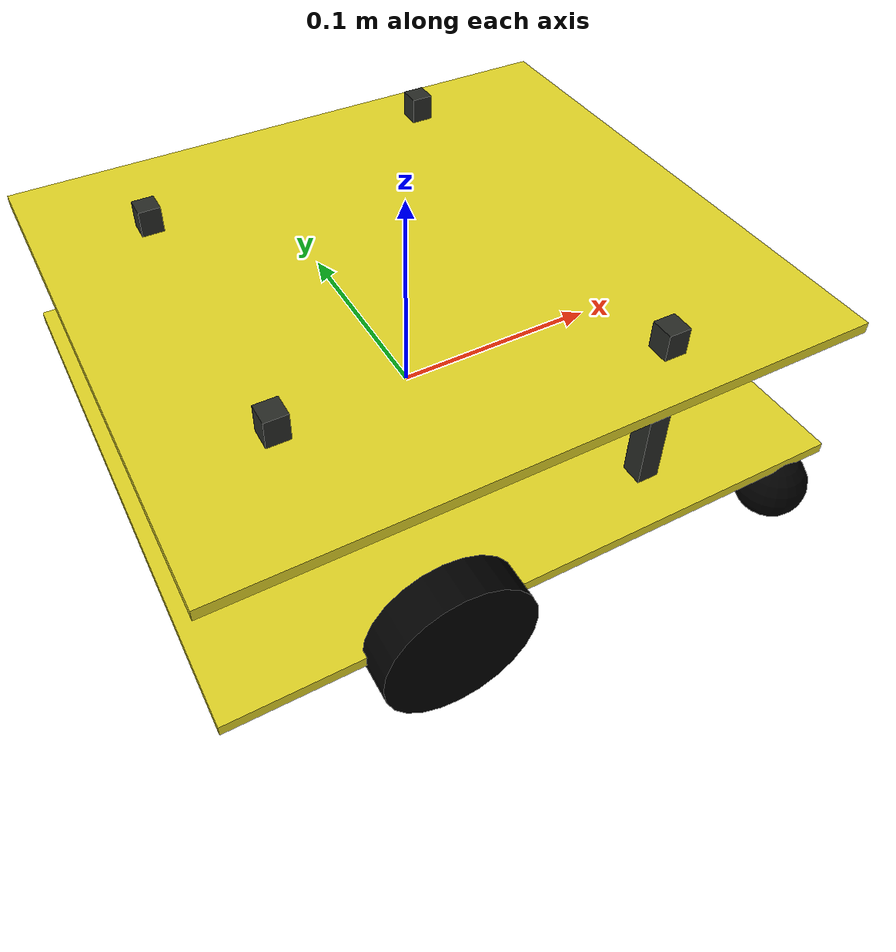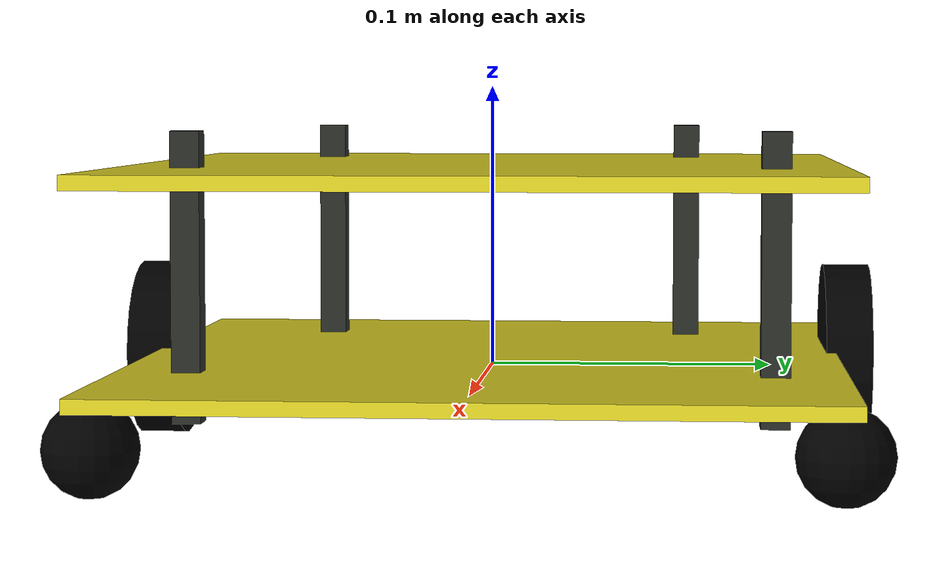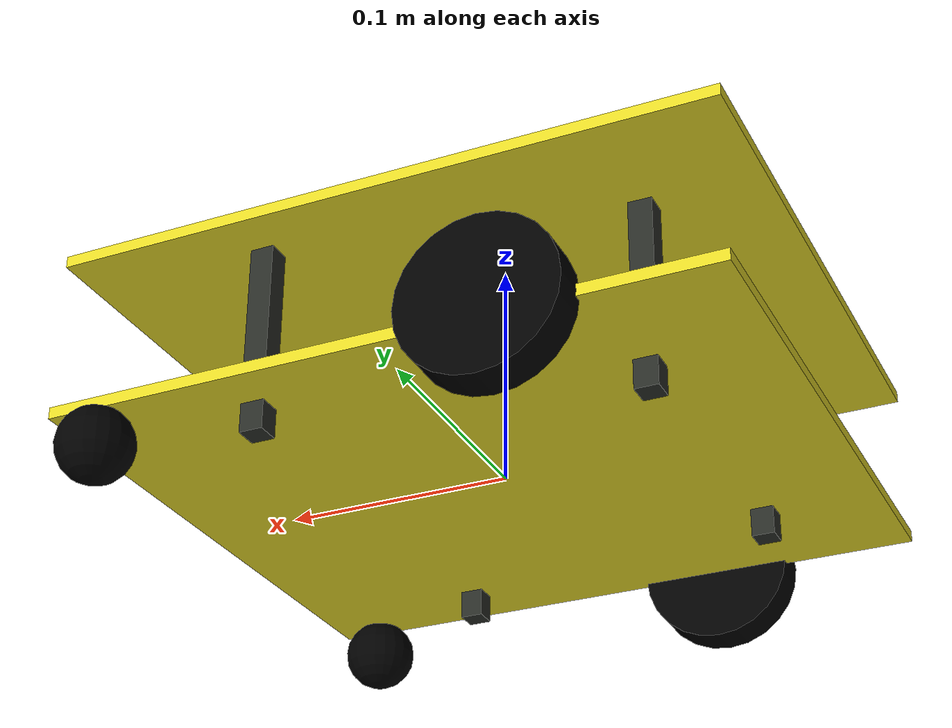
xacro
<?xml version="1.0"?>
<robot name="mrobot" xmlns:xacro="http://www.ros.org/wiki/xacro">

    <!-- Defining the colors used in this robot -->
    <material name="Black">
        <color rgba="0 0 0 1"/>
    </material>

    <material name="White">
        <color rgba="1 1 1 1"/>
    </material>

    <material name="Blue">
        <color rgba="0 0 1 1"/>
    </material>

    <material name="Red">
        <color rgba="1 0 0 1"/>
    </material>

    <!-- PROPERTY LIST -->
    <!--All units in m-kg-s-radians unit system -->
    <xacro:property name="M_PI" value="3.1415926535897931" />

    <xacro:property name="base_link_length_up" value="0.005"/>
    <xacro:property name="base_link_radius" value="0.13"/>

    <!-- Main body length, width, height and mass -->
    <xacro:property name="base_link_mass"        value="0.5" />
    <xacro:property name="base_link_width" value="0.25"/>
    <xacro:property name="base_link_length" value="0.28"/>
    <xacro:property name="base_link_hight" value="0.005"/>

    <xacro:property name="motor_x" value="-0.05"/>

    <!-- Caster radius and mass -->
    <xacro:property name="caster_radius"          value="0.016" />
    <xacro:property name="caster_mass"            value="0.01" />
    <xacro:property name="caster_joint_origin_x"  value="-0.12" />

    <!-- Wheel radius, height and mass -->
    <xacro:property name="wheel_radius" value="0.033" />
    <xacro:property name="wheel_height" value="0.017" />
    <xacro:property name="wheel_mass"   value="0.1" />

    <!-- plate height and mass -->
    <xacro:property name="plate_mass"   value="0.05"/>
    <xacro:property name="plate_height" value="0.07"/>
    <xacro:property name="standoff_x"   value="0.12"/>
    <xacro:property name="standoff_y"   value="0.10"/>

    <!-- Macro for inertia matrix -->
    <xacro:macro name="sphere_inertial_matrix" params="m r">
        <inertial>
            <mass value="${m}" />
            <inertia ixx="${2*m*r*r/5}" ixy="0" ixz="0"
                iyy="${2*m*r*r/5}" iyz="0"
                izz="${2*m*r*r/5}" />
        </inertial>
    </xacro:macro>

    <xacro:macro name="cylinder_inertial_matrix" params="m r h">
        <inertial>
            <mass value="${m}" />
            <inertia ixx="${m*(3*r*r+h*h)/12}" ixy = "0" ixz = "0"
                iyy="${m*(3*r*r+h*h)/12}" iyz = "0"
                izz="${m*r*r/2}" />
        </inertial>
    </xacro:macro>

    <xacro:macro name="box_inertial_matrix" params="m w h d">
        <inertial>
            <mass value="${m}" />
            <inertia ixx="${m*(h*h+d*d)/12}" ixy = "0" ixz = "0"
                iyy="${m*(w*w+d*d)/12}" iyz = "0"
                izz="${m*(w*w+h*h)/12}" />
        </inertial>
    </xacro:macro>

    <!-- Macro for wheel joint -->
    <xacro:macro name="wheel" params="lr translateY">
        <!-- lr: left, right -->
        <link name="wheel_${lr}_link">
            <visual>
                <origin xyz="0 0 0" rpy="${M_PI/2} 0  0 " />
                <geometry>
                    <cylinder length="${wheel_height}" radius="${wheel_radius}" />
                </geometry>
                <material name="Black" />
            </visual>
            <collision>
                <origin xyz="0 0 0" rpy="${M_PI/2} 0 0 " />
                <geometry>
                    <cylinder length="${wheel_height}" radius="${wheel_radius}" />
                </geometry>
            </collision>
            <cylinder_inertial_matrix  m="${wheel_mass}" r="${wheel_radius}" h="${wheel_height}" />
        </link>

        <gazebo reference="wheel_${lr}_link">
            <material>Gazebo/Black</material>
        </gazebo>

        <joint name="base_to_wheel_${lr}_joint" type="continuous">
            <parent link="base_link"/>
            <child link="wheel_${lr}_link"/>
            <origin xyz="${motor_x} ${translateY * base_link_radius} 0" rpy="0 0 0" />
            <axis xyz="0 1 0" rpy="0  0" />
        </joint>

        <!-- Transmission is important to link the joints and the controller -->
        <transmission name="wheel_${lr}_joint_trans">
            <type>transmission_interface/SimpleTransmission</type>
            <joint name="base_to_wheel_${lr}_joint" />
            <actuator name="wheel_${lr}_joint_motor">
                <hardwareInterface>VelocityJointInterface</hardwareInterface>
                <mechanicalReduction>1</mechanicalReduction>
            </actuator>
        </transmission>
    </xacro:macro>

    <!-- Macro for caster joint -->
    <xacro:macro name="caster" params="fb translateX casY">
        <!-- fb: front, back -->
        <link name="${fb}_caster_link">
            <visual>
                <origin xyz="0 0 0 " rpy="0 0 0" />
                <geometry>
                    <sphere radius="${caster_radius}" />
                </geometry>
                <material name="Black" />
            </visual>
            <collision>
                <geometry>
                    <sphere radius="${caster_radius}" />
                </geometry>
                <origin xyz="0 0 0 " rpy="0 0 0" />
            </collision>
            <sphere_inertial_matrix  m="${caster_mass}" r="${caster_radius}" />
        </link>

        <gazebo reference="${fb}_caster_link">
            <material>Gazebo/Black</material>
        </gazebo>

        <joint name="base_to_${fb}_caster_joint" type="fixed">
            <parent link="base_link"/>
            <child link="${fb}_caster_link"/>
            <origin xyz="${translateX*caster_joint_origin_x} ${casY*caster_joint_origin_x} ${-caster_radius}" rpy="0 0 0"/>
        </joint>
    </xacro:macro>

    <!-- Macro for plate joint -->
    <xacro:macro name="plate" params="num parent">
        <link name="plate_${num}_link">
	    <box_inertial_matrix m="0.1" w="${base_link_width}" h="${base_link_hight}" d="${base_link_length}" />

            <visual>
                <origin xyz=" 0 0 0 " rpy="0 0 0" />
                <geometry>
		    <box size="${base_link_length} ${base_link_width} ${base_link_hight}" />
                </geometry>
                <material name="yellow"/>
            </visual>

            <collision>
                <origin xyz="0.0 0.0 0.0" rpy="0 0 0" />
                <geometry>
		    <box size="${base_link_length} ${base_link_width} ${base_link_hight}" />
                </geometry>
            </collision>
        </link>
        <gazebo reference="plate_${num}_link">
            <material>Gazebo/Blue</material>
        </gazebo>
        <joint name="plate_${num}_joint" type="fixed">
            <origin xyz="0 0 ${plate_height}" rpy="0 0 0" />
            <parent link="${parent}"/>
            <child link="plate_${num}_link" />
        </joint>
    </xacro:macro>

    <!-- Macro for standoff joint -->
    <xacro:macro name="mrobot_standoff_2in" params="parent number x_loc y_loc z_loc">
        <joint name="standoff_2in_${number}_joint" type="fixed">
            <origin xyz="${x_loc} ${y_loc} ${z_loc}" rpy="0 0 0" />
            <parent link="${parent}"/>
            <child link="standoff_2in_${number}_link" />
        </joint>

        <link name="standoff_2in_${number}_link">
            <inertial>
                <mass value="0.001" />
                <origin xyz="0 0 0" />
                <inertia ixx="0.0001" ixy="0.0" ixz="0.0"
          iyy="0.0001" iyz="0.0"
          izz="0.0001" />
            </inertial>

            <visual>
                <origin xyz=" 0 0 0 " rpy="0 0 0" />
                <geometry>
                    <box size="0.01 0.01 0.1" />
                </geometry>
                <material name="black">
                    <color rgba="0.16 0.17 0.15 0.9"/>
                </material>
            </visual>

            <collision>
                <origin xyz="0.0 0.0 0.0" rpy="0 0 0" />
                <geometry>
                    <box size="0.01 0.01 0.1" />
                </geometry>
            </collision>
        </link>
    </xacro:macro>

    <!-- BASE-FOOTPRINT -->
    <!-- base_footprint is a fictitious link(frame) that is on the ground right below base_link origin -->
    <xacro:macro name="mrobot_body">

        <!-- BASE-LINK -->
        <!--Actual body/chassis of the robot-->
        <link name="base_link">
            <box_inertial_matrix m="${base_link_mass}" w="${base_link_width}" h="${base_link_hight}" d="${base_link_length}" />
            <visual>
                <origin xyz=" 0 0 0" rpy="0 0 0" />
                <geometry>
                    <box size="${base_link_length} ${base_link_width} ${base_link_hight}" />
                </geometry>
                <material name="yellow" />
            </visual>

            <collision>
                <origin xyz="0 0 0" rpy="0 0 0" />
                <geometry>
		    <box size="${base_link_length} ${base_link_width} ${base_link_hight}" />
                </geometry>
            </collision>
        </link>
        <gazebo reference="base_link">
            <material>Gazebo/Red</material>
        </gazebo>

        <!-- Wheel Definitions -->
        <wheel lr="right"  translateY="1" />
        <wheel lr="left"  translateY="-1" />

        <!-- Casters Definitions -->
        <caster fb="front"  translateX="-1" casY="1" />
        <caster fb="front2"  translateX="-1" casY="-1" />

	<!-- standoff Definitions -->
        <mrobot_standoff_2in parent="base_link" number="1" x_loc="-${standoff_x/2 + 0.03}" y_loc="-${standoff_y - 0.03}" z_loc="${plate_height/2}"/>
        <mrobot_standoff_2in parent="base_link" number="2" x_loc="-${standoff_x/2 + 0.03}" y_loc="${standoff_y - 0.03}" z_loc="${plate_height/2}"/>
        <mrobot_standoff_2in parent="base_link" number="3" x_loc="${standoff_x/2}" y_loc="-${standoff_y}" z_loc="${plate_height/2}"/>
        <mrobot_standoff_2in parent="base_link" number="4" x_loc="${standoff_x/2}" y_loc="${standoff_y}" z_loc="${plate_height/2}"/>

	<!-- plate Definitions -->
	<plate num="1"  parent="base_link" />

        <!-- controller -->
        <gazebo>
            <plugin name="differential_drive_controller" filename="libgazebo_ros_diff_drive.so">
                <rosDebugLevel>Debug</rosDebugLevel>
                <publishWheelTF>true</publishWheelTF>
                <robotNamespace>/</robotNamespace>
                <publishTf>1</publishTf>
                <publishWheelJointState>true</publishWheelJointState>
                <alwaysOn>true</alwaysOn>
                <updateRate>100.0</updateRate>
                <legacyMode>true</legacyMode>
                <leftJoint>base_to_wheel_left_joint</leftJoint>
                <rightJoint>base_to_wheel_right_joint</rightJoint>
                <wheelSeparation>${base_link_radius*2}</wheelSeparation>
                <wheelDiameter>${2*wheel_radius}</wheelDiameter>
                <broadcastTF>1</broadcastTF>
                <wheelTorque>30</wheelTorque>
                <wheelAcceleration>1.8</wheelAcceleration>
                <commandTopic>cmd_vel</commandTopic>
                <odometryFrame>odom</odometryFrame>
                <odometryTopic>odom</odometryTopic>
                <robotBaseFrame>base_footprint</robotBaseFrame>
            </plugin>
        </gazebo>

    </xacro:macro>
	<!-- Body of mrobot, with plates, standoffs -->
	<mrobot_body/>

</robot>
